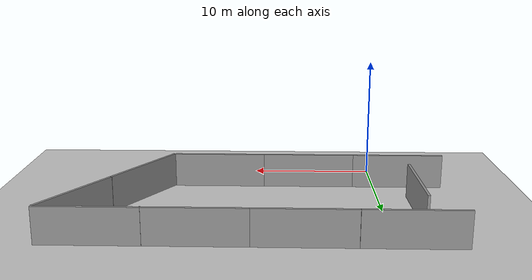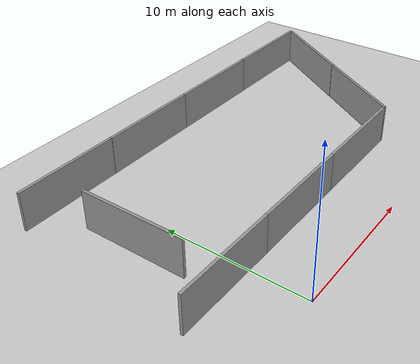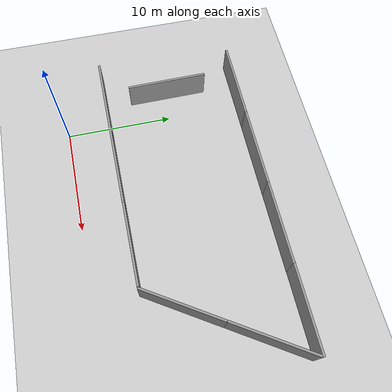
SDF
<sdf version="1.6">
 <world name="default">
  <model name="ground_plane">
   <static>1</static>
   <link name="link">
    <collision name="collision">
     <geometry><plane><normal>0 0 1</normal><size>100 100</size></plane></geometry>
     <surface><friction><ode><mu>100</mu><mu2>50</mu2></ode></friction></surface>
    </collision>
    <visual name="visual">
     <cast_shadows>0</cast_shadows>
     <geometry><plane><normal>0 0 1</normal><size>100 100</size></plane></geometry>
     <material>
      <script><uri>file://media/materials/scripts/gazebo.material</uri><name>Gazebo/Grey</name></script>
     </material>
    </visual>
   </link>
  </model>
  <light name="sun" type="directional">
   <pose>0 0 10 0 -0 0</pose>
   <diffuse>0.8 0.8 0.8 1</diffuse>
   <specular>0.1 0.1 0.1 1</specular>
   <attenuation>
    <range>1000</range>
    <constant>0.9</constant>
    <linear>0.01</linear>
    <quadratic>0.001</quadratic>
   </attenuation>
   <direction>-0.5 0.5 -1</direction>
  </light>
  <physics name="default_physics" default="0" type="ode">
   <ode>
    <solver>
     <type>quick</type>
     <iters>1000</iters>
     <sor>1.3</sor>
     <use_dynamic_moi_rescaling>0</use_dynamic_moi_rescaling>
    </solver>
    <constraints>
     <cfm>0</cfm>
     <erp>0.2</erp>
     <contact_max_correcting_vel>100</contact_max_correcting_vel>
     <contact_surface_layer>0.001</contact_surface_layer>
    </constraints>
   </ode>
   <max_step_size>0.01</max_step_size>
   <real_time_factor>1</real_time_factor>
   <real_time_update_rate>100</real_time_update_rate>
  </physics>
  <gravity>0 0 -9.8</gravity>
  <magnetic_field>6e-06 2.3e-05 -4.2e-05</magnetic_field>
  <atmosphere type="adiabatic"/>
  <scene><ambient>0.4 0.4 0.4 1</ambient><background>0.7 0.7 0.7 1</background><shadows>1</shadows></scene>
  <spherical_coordinates>
   <surface_model>EARTH_WGS84</surface_model>
   <latitude_deg>0</latitude_deg>
   <longitude_deg>0</longitude_deg>
   <elevation>0</elevation>
   <heading_deg>0</heading_deg>
  </spherical_coordinates>
  <model name="grey_wall">
   <static>1</static>
   <link name="link">
    <pose>0 0 1.4 0 -0 0</pose>
    <collision name="collision"><geometry><box><size>7.5 0.2 2.8</size></box></geometry></collision>
    <visual name="visual">
     <cast_shadows>0</cast_shadows>
     <geometry><box><size>7.5 0.2 2.8</size></box></geometry>
     <material>
      <script>
       <uri>model://grey_wall/materials/scripts</uri>
       <uri>model://grey_wall/materials/textures</uri>
       <name>vrc/grey_wall</name>
      </script>
     </material>
    </visual>
   </link>
   <pose>-1.97481 4.11952 0 0 -0 0</pose>
  </model>
  <model name="grey_wall_0">
   <static>1</static>
   <link name="link">
    <pose>0 0 1.4 0 -0 0</pose>
    <collision name="collision"><geometry><box><size>7.5 0.2 2.8</size></box></geometry></collision>
    <visual name="visual">
     <cast_shadows>0</cast_shadows>
     <geometry><box><size>7.5 0.2 2.8</size></box></geometry>
     <material>
      <script>
       <uri>model://grey_wall/materials/scripts</uri>
       <uri>model://grey_wall/materials/textures</uri>
       <name>vrc/grey_wall</name>
      </script>
     </material>
    </visual>
   </link>
   <pose>5.50158 4.1217 0 0 -0 0</pose>
  </model>
  <model name="grey_wall_1">
   <static>1</static>
   <link name="link">
    <pose>0 0 1.4 0 -0 0</pose>
    <collision name="collision"><geometry><box><size>7.5 0.2 2.8</size></box></geometry></collision>
    <visual name="visual">
     <cast_shadows>0</cast_shadows>
     <geometry><box><size>7.5 0.2 2.8</size></box></geometry>
     <material>
      <script>
       <uri>model://grey_wall/materials/scripts</uri>
       <uri>model://grey_wall/materials/textures</uri>
       <name>vrc/grey_wall</name>
      </script>
     </material>
    </visual>
   </link>
   <pose>12.9992 4.13078 0 0 -0 0</pose>
  </model>
  <model name="grey_wall_2">
   <static>1</static>
   <link name="link">
    <pose>0 0 1.4 0 -0 0</pose>
    <collision name="collision"><geometry><box><size>7.5 0.2 2.8</size></box></geometry></collision>
    <visual name="visual">
     <cast_shadows>0</cast_shadows>
     <geometry><box><size>7.5 0.2 2.8</size></box></geometry>
     <material>
      <script>
       <uri>model://grey_wall/materials/scripts</uri>
       <uri>model://grey_wall/materials/textures</uri>
       <name>vrc/grey_wall</name>
      </script>
     </material>
    </visual>
   </link>
   <pose>18.8391 7.25684 0 0 -0 1.01032</pose>
  </model>
  <model name="grey_wall_3">
   <static>1</static>
   <link name="link">
    <pose>0 0 1.4 0 -0 0</pose>
    <collision name="collision"><geometry><box><size>7.5 0.2 2.8</size></box></geometry></collision>
    <visual name="visual">
     <cast_shadows>0</cast_shadows>
     <geometry><box><size>7.5 0.2 2.8</size></box></geometry>
     <material>
      <script>
       <uri>model://grey_wall/materials/scripts</uri>
       <uri>model://grey_wall/materials/textures</uri>
       <name>vrc/grey_wall</name>
      </script>
     </material>
    </visual>
   </link>
   <pose>21.1432 16.8972 0 0 -0 0</pose>
  </model>
  <model name="grey_wall_2_clone">
   <static>1</static>
   <link name="link">
    <pose>0 0 1.4 0 -0 0</pose>
    <collision name="collision"><geometry><box><size>7.5 0.2 2.8</size></box></geometry></collision>
    <visual name="visual">
     <cast_shadows>0</cast_shadows>
     <geometry><box><size>7.5 0.2 2.8</size></box></geometry>
     <material>
      <script>
       <uri>model://grey_wall/materials/scripts</uri>
       <uri>model://grey_wall/materials/textures</uri>
       <name>vrc/grey_wall</name>
      </script>
     </material>
    </visual>
   </link>
   <pose>22.8333 13.6276 0 0 -0 1.01032</pose>
  </model>
  <model name="grey_wall_3_clone">
   <static>1</static>
   <link name="link">
    <pose>0 0 1.4 0 -0 0</pose>
    <collision name="collision"><geometry><box><size>7.5 0.2 2.8</size></box></geometry></collision>
    <visual name="visual">
     <cast_shadows>0</cast_shadows>
     <geometry><box><size>7.5 0.2 2.8</size></box></geometry>
     <material>
      <script>
       <uri>model://grey_wall/materials/scripts</uri>
       <uri>model://grey_wall/materials/textures</uri>
       <name>vrc/grey_wall</name>
      </script>
     </material>
    </visual>
   </link>
   <pose>13.7248 16.882 0 0 -0 0</pose>
  </model>
  <model name="grey_wall_3_clone_clone">
   <static>1</static>
   <link name="link">
    <pose>0 0 1.4 0 -0 0</pose>
    <collision name="collision"><geometry><box><size>7.5 0.2 2.8</size></box></geometry></collision>
    <visual name="visual">
     <cast_shadows>0</cast_shadows>
     <geometry><box><size>7.5 0.2 2.8</size></box></geometry>
     <material>
      <script>
       <uri>model://grey_wall/materials/scripts</uri>
       <uri>model://grey_wall/materials/textures</uri>
       <name>vrc/grey_wall</name>
      </script>
     </material>
    </visual>
   </link>
   <pose>6.26537 16.8814 0 0 -0 0</pose>
  </model>
  <model name="grey_wall_3_clone_clone_0">
   <static>1</static>
   <link name="link">
    <pose>0 0 1.4 0 -0 0</pose>
    <collision name="collision"><geometry><box><size>7.5 0.2 2.8</size></box></geometry></collision>
    <visual name="visual">
     <cast_shadows>0</cast_shadows>
     <geometry><box><size>7.5 0.2 2.8</size></box></geometry>
     <material>
      <script>
       <uri>model://grey_wall/materials/scripts</uri>
       <uri>model://grey_wall/materials/textures</uri>
       <name>vrc/grey_wall</name>
      </script>
     </material>
    </visual>
   </link>
   <pose>-1.24766 16.8863 0 0 -0 0</pose>
  </model>
  <model name="grey_wall_3_clone_clone_1">
   <static>1</static>
   <link name="link">
    <pose>0 0 1.4 0 -0 0</pose>
    <collision name="collision"><geometry><box><size>7.5 0.2 2.8</size></box></geometry></collision>
    <visual name="visual">
     <cast_shadows>0</cast_shadows>
     <geometry><box><size>7.5 0.2 2.8</size></box></geometry>
     <material>
      <script>
       <uri>model://grey_wall/materials/scripts</uri>
       <uri>model://grey_wall/materials/textures</uri>
       <name>vrc/grey_wall</name>
      </script>
     </material>
    </visual>
   </link>
   <pose>-2.54998 10.3118 0 0 0 -1.55755</pose>
  </model>
 </world>
</sdf>
